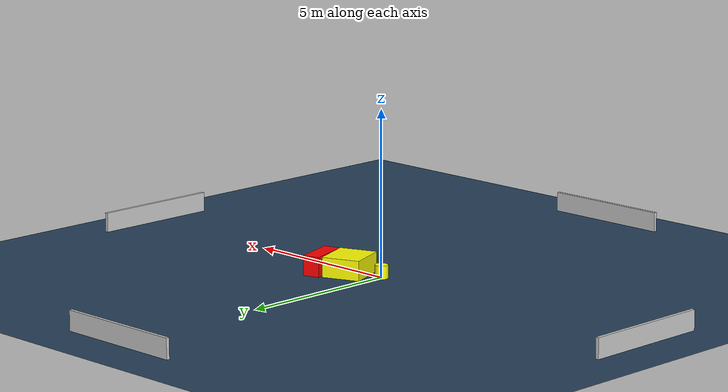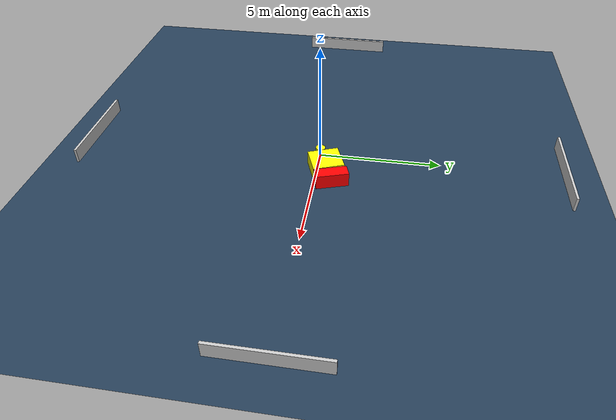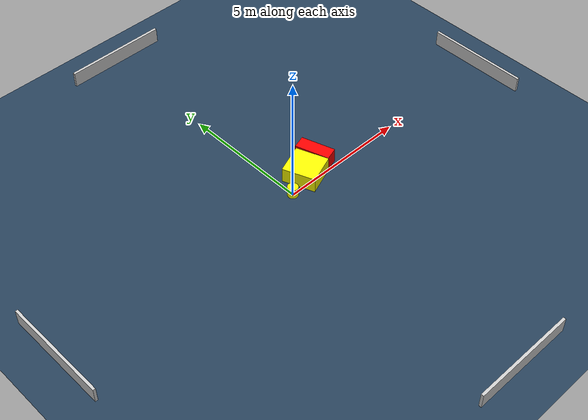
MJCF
<?xml version="1.0" ?>
<mujoco model="generated_environment">
  <option timestep="0.01" integrator="RK4" cone="elliptic"/>
  <default>
    <geom density="1"/>
  </default>
  <asset>
    <texture builtin="gradient" height="3072" name="skybox" rgb1="0.3 0.5 0.7" rgb2="0 0 0" type="skybox" width="512"/>
    <texture builtin="checker" height="300" name="groundplane" rgb1="0.2 0.3 0.4" rgb2="0.1 0.2 0.3" type="2d" width="300"/>
    <material name="groundplane" reflectance="0.2" texrepeat="5 5" texture="groundplane"/>
  </asset>
  <worldbody>
    <light dir="0 0 -1" directional="true" pos="0 0 1.5"/>
    <geom condim="3" friction="0.5 0.005 0.001" material="groundplane" name="floor" pos="0 0 0" size="0 0 0.05" type="plane"/>
    <body name="walls">
      <geom name="wall_1" condim="4" pos="-10.0 0.0 0.3" rgba="0.800000011920929 0.800000011920929 0.800000011920929 1.0" size="0.05 2.0 0.3" type="box"/>
      <geom name="wall_2" condim="4" pos="10.0 0.0 0.3" rgba="0.800000011920929 0.800000011920929 0.800000011920929 1.0" size="0.05 2.0 0.3" type="box"/>
      <geom name="wall_3" condim="4" pos="0.0 -10.0 0.3" rgba="0.800000011920929 0.800000011920929 0.800000011920929 1.0" size="2.0 0.05 0.3" type="box"/>
      <geom name="wall_4" condim="4" pos="0.0 10.0 0.3" rgba="0.800000011920929 0.800000011920929 0.800000011920929 1.0" size="2.0 0.05 0.3" type="box"/>
    </body>
    <body name="robot">
      <joint name="joint_x" type="slide" pos="0 0 0" axis="1 0 0"/>
      <joint name="joint_y" type="slide" pos="0 0 0" axis="0 1 0"/>
      <geom name="robot" type="cylinder" pos="0.0 0.0 0.2" size="0.2 0.2 0.0" mass="5.0" friction="1.0 0.005 0.0001" condim="4" rgba="1.0 1.0 0.0 1.0"/>
    </body>
    <body name="obstacle_1_movable">
      <geom name="obstacle_1_movable" condim="4" pos="0.9618136618520219 0.3624475387894704 0.3" euler="0 0 111.03096529404142" friction="0.0 0.005 0.001" rgba="1.0 1.0 0.0 1.0" size="0.635792846258501 0.5857488976699864 0.3" type="box" mass="0.1"/>
      <joint type="free"/>
    </body>
    <body name="obstacle_2_static">
      <geom name="obstacle_2_static" condim="4" pos="1.7787002636227194 0.7031550293752387 0.3" euler="0 0 107.76207344469599" friction="0.0 0.005 0.001" rgba="1.0 0.0 0.0 1.0" size="0.6600156409723905 0.25600441822038056 0.3" type="box"/>
    </body>
  </worldbody>
  <actuator>
    <motor name="actuator_x" joint="joint_x" gear="1" ctrlrange="-1 1"/>
    <motor name="actuator_y" joint="joint_y" gear="1" ctrlrange="-1 1"/>
  </actuator>
</mujoco>
